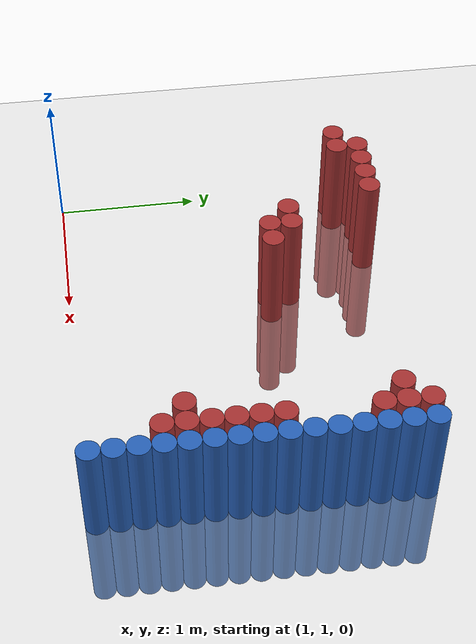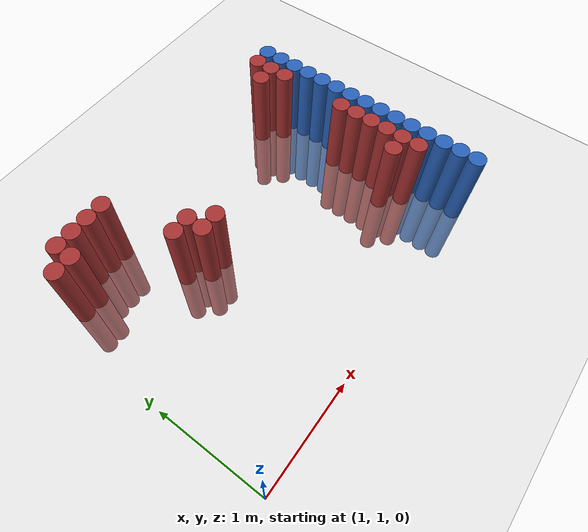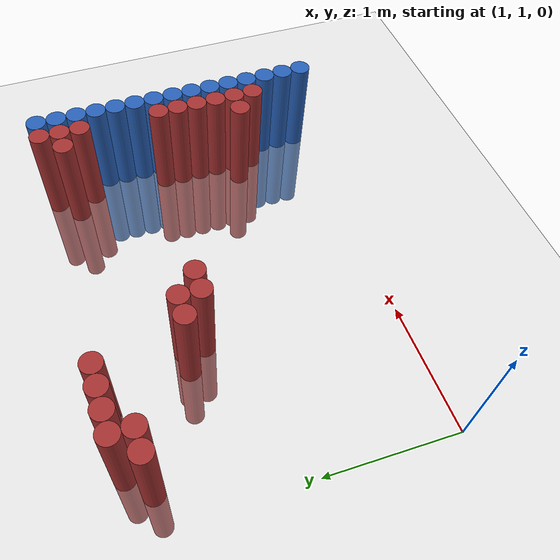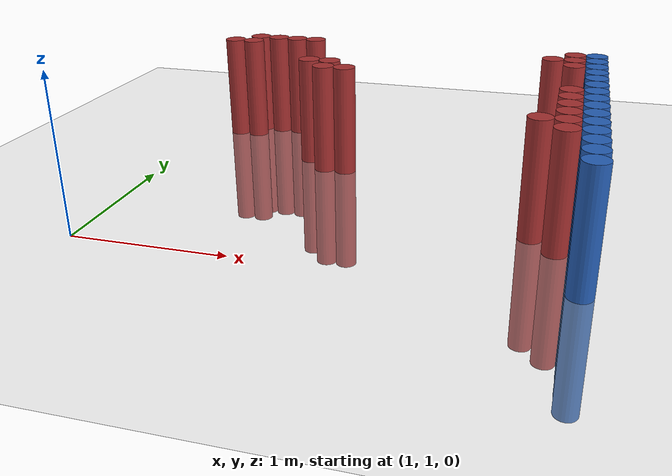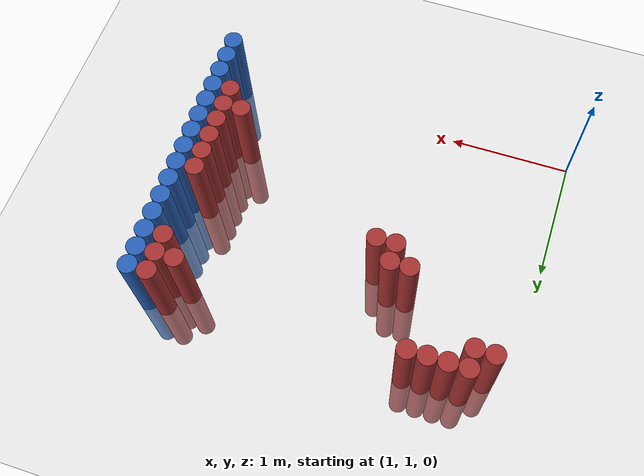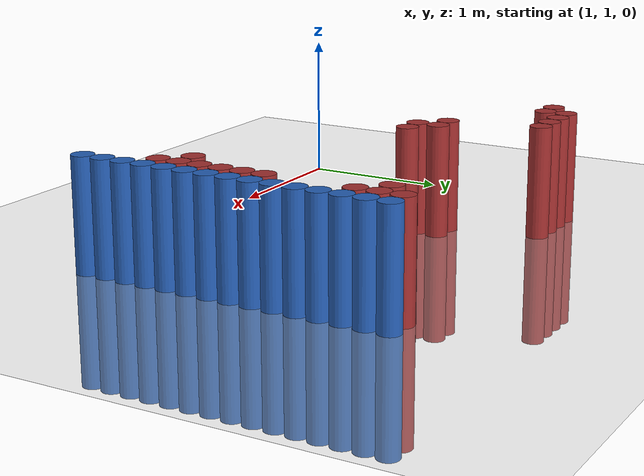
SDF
<sdf version="1.6">
 <world name="default">
  <model name="ground_plane">
   <static>1</static>
   <link name="link">
    <collision name="collision">
     <geometry><plane><normal>0 0 1</normal><size>100 100</size></plane></geometry>
     <surface><friction><ode><mu>100</mu><mu2>50</mu2></ode></friction></surface>
    </collision>
    <visual name="visual">
     <cast_shadows>0</cast_shadows>
     <geometry><plane><normal>0 0 1</normal><size>100 100</size></plane></geometry>
     <material>
      <script><uri>file://media/materials/scripts/gazebo.material</uri><name>Gazebo/Grey</name></script>
     </material>
    </visual>
   </link>
  </model>
  <model name="unit_cylinder_130">
   <static>1</static>
   <pose>3.925000 1.225000 0.000000 0.000000 0.000000 0.000000</pose>
   <link name="link">
    <inertial>
     <mass>1</mass>
     <inertia><ixx>0.145833</ixx><ixy>0</ixy><ixz>0</ixz><iyy>0.145833</iyy><iyz>0</iyz><izz>0.125</izz></inertia>
    </inertial>
    <collision name="collision">
     <geometry><cylinder><radius>0.075000</radius><length>1.5</length></cylinder></geometry>
    </collision>
    <visual name="visual">
     <geometry><cylinder><radius>0.075000</radius><length>1.5</length></cylinder></geometry>
     <material>
      <ambient>0.152000 0.379000 0.720000 1</ambient>
      <diffuse>0.152000 0.379000 0.720000 1</diffuse>
     </material>
     <material>
      <script><name>Gazebo/Grey</name><uri>file://media/materials/scripts/gazebo.material</uri></script>
     </material>
    </visual>
   </link>
  </model>
  <model name="unit_cylinder_132">
   <static>1</static>
   <pose>3.925000 1.375000 0.000000 0.000000 0.000000 0.000000</pose>
   <link name="link">
    <inertial>
     <mass>1</mass>
     <inertia><ixx>0.145833</ixx><ixy>0</ixy><ixz>0</ixz><iyy>0.145833</iyy><iyz>0</iyz><izz>0.125</izz></inertia>
    </inertial>
    <collision name="collision">
     <geometry><cylinder><radius>0.075000</radius><length>1.5</length></cylinder></geometry>
    </collision>
    <visual name="visual">
     <geometry><cylinder><radius>0.075000</radius><length>1.5</length></cylinder></geometry>
     <material>
      <ambient>0.152000 0.379000 0.720000 1</ambient>
      <diffuse>0.152000 0.379000 0.720000 1</diffuse>
     </material>
     <material>
      <script><name>Gazebo/Grey</name><uri>file://media/materials/scripts/gazebo.material</uri></script>
     </material>
    </visual>
   </link>
  </model>
  <model name="unit_cylinder_134">
   <static>1</static>
   <pose>3.925000 1.525000 0.000000 0.000000 0.000000 0.000000</pose>
   <link name="link">
    <inertial>
     <mass>1</mass>
     <inertia><ixx>0.145833</ixx><ixy>0</ixy><ixz>0</ixz><iyy>0.145833</iyy><iyz>0</iyz><izz>0.125</izz></inertia>
    </inertial>
    <collision name="collision">
     <geometry><cylinder><radius>0.075000</radius><length>1.5</length></cylinder></geometry>
    </collision>
    <visual name="visual">
     <geometry><cylinder><radius>0.075000</radius><length>1.5</length></cylinder></geometry>
     <material>
      <ambient>0.152000 0.379000 0.720000 1</ambient>
      <diffuse>0.152000 0.379000 0.720000 1</diffuse>
     </material>
     <material>
      <script><name>Gazebo/Grey</name><uri>file://media/materials/scripts/gazebo.material</uri></script>
     </material>
    </visual>
   </link>
  </model>
  <model name="unit_cylinder_136">
   <static>1</static>
   <pose>3.925000 1.675000 0.000000 0.000000 0.000000 0.000000</pose>
   <link name="link">
    <inertial>
     <mass>1</mass>
     <inertia><ixx>0.145833</ixx><ixy>0</ixy><ixz>0</ixz><iyy>0.145833</iyy><iyz>0</iyz><izz>0.125</izz></inertia>
    </inertial>
    <collision name="collision">
     <geometry><cylinder><radius>0.075000</radius><length>1.5</length></cylinder></geometry>
    </collision>
    <visual name="visual">
     <geometry><cylinder><radius>0.075000</radius><length>1.5</length></cylinder></geometry>
     <material>
      <ambient>0.152000 0.379000 0.720000 1</ambient>
      <diffuse>0.152000 0.379000 0.720000 1</diffuse>
     </material>
     <material>
      <script><name>Gazebo/Grey</name><uri>file://media/materials/scripts/gazebo.material</uri></script>
     </material>
    </visual>
   </link>
  </model>
  <model name="unit_cylinder_138">
   <static>1</static>
   <pose>3.925000 1.825000 0.000000 0.000000 0.000000 0.000000</pose>
   <link name="link">
    <inertial>
     <mass>1</mass>
     <inertia><ixx>0.145833</ixx><ixy>0</ixy><ixz>0</ixz><iyy>0.145833</iyy><iyz>0</iyz><izz>0.125</izz></inertia>
    </inertial>
    <collision name="collision">
     <geometry><cylinder><radius>0.075000</radius><length>1.5</length></cylinder></geometry>
    </collision>
    <visual name="visual">
     <geometry><cylinder><radius>0.075000</radius><length>1.5</length></cylinder></geometry>
     <material>
      <ambient>0.152000 0.379000 0.720000 1</ambient>
      <diffuse>0.152000 0.379000 0.720000 1</diffuse>
     </material>
     <material>
      <script><name>Gazebo/Grey</name><uri>file://media/materials/scripts/gazebo.material</uri></script>
     </material>
    </visual>
   </link>
  </model>
  <model name="unit_cylinder_140">
   <static>1</static>
   <pose>3.925000 1.975000 0.000000 0.000000 0.000000 0.000000</pose>
   <link name="link">
    <inertial>
     <mass>1</mass>
     <inertia><ixx>0.145833</ixx><ixy>0</ixy><ixz>0</ixz><iyy>0.145833</iyy><iyz>0</iyz><izz>0.125</izz></inertia>
    </inertial>
    <collision name="collision">
     <geometry><cylinder><radius>0.075000</radius><length>1.5</length></cylinder></geometry>
    </collision>
    <visual name="visual">
     <geometry><cylinder><radius>0.075000</radius><length>1.5</length></cylinder></geometry>
     <material>
      <ambient>0.152000 0.379000 0.720000 1</ambient>
      <diffuse>0.152000 0.379000 0.720000 1</diffuse>
     </material>
     <material>
      <script><name>Gazebo/Grey</name><uri>file://media/materials/scripts/gazebo.material</uri></script>
     </material>
    </visual>
   </link>
  </model>
  <model name="unit_cylinder_142">
   <static>1</static>
   <pose>3.925000 2.125000 0.000000 0.000000 0.000000 0.000000</pose>
   <link name="link">
    <inertial>
     <mass>1</mass>
     <inertia><ixx>0.145833</ixx><ixy>0</ixy><ixz>0</ixz><iyy>0.145833</iyy><iyz>0</iyz><izz>0.125</izz></inertia>
    </inertial>
    <collision name="collision">
     <geometry><cylinder><radius>0.075000</radius><length>1.5</length></cylinder></geometry>
    </collision>
    <visual name="visual">
     <geometry><cylinder><radius>0.075000</radius><length>1.5</length></cylinder></geometry>
     <material>
      <ambient>0.152000 0.379000 0.720000 1</ambient>
      <diffuse>0.152000 0.379000 0.720000 1</diffuse>
     </material>
     <material>
      <script><name>Gazebo/Grey</name><uri>file://media/materials/scripts/gazebo.material</uri></script>
     </material>
    </visual>
   </link>
  </model>
  <model name="unit_cylinder_144">
   <static>1</static>
   <pose>3.925000 2.275000 0.000000 0.000000 0.000000 0.000000</pose>
   <link name="link">
    <inertial>
     <mass>1</mass>
     <inertia><ixx>0.145833</ixx><ixy>0</ixy><ixz>0</ixz><iyy>0.145833</iyy><iyz>0</iyz><izz>0.125</izz></inertia>
    </inertial>
    <collision name="collision">
     <geometry><cylinder><radius>0.075000</radius><length>1.5</length></cylinder></geometry>
    </collision>
    <visual name="visual">
     <geometry><cylinder><radius>0.075000</radius><length>1.5</length></cylinder></geometry>
     <material>
      <ambient>0.152000 0.379000 0.720000 1</ambient>
      <diffuse>0.152000 0.379000 0.720000 1</diffuse>
     </material>
     <material>
      <script><name>Gazebo/Grey</name><uri>file://media/materials/scripts/gazebo.material</uri></script>
     </material>
    </visual>
   </link>
  </model>
  <model name="unit_cylinder_146">
   <static>1</static>
   <pose>3.925000 2.425000 0.000000 0.000000 0.000000 0.000000</pose>
   <link name="link">
    <inertial>
     <mass>1</mass>
     <inertia><ixx>0.145833</ixx><ixy>0</ixy><ixz>0</ixz><iyy>0.145833</iyy><iyz>0</iyz><izz>0.125</izz></inertia>
    </inertial>
    <collision name="collision">
     <geometry><cylinder><radius>0.075000</radius><length>1.5</length></cylinder></geometry>
    </collision>
    <visual name="visual">
     <geometry><cylinder><radius>0.075000</radius><length>1.5</length></cylinder></geometry>
     <material>
      <ambient>0.152000 0.379000 0.720000 1</ambient>
      <diffuse>0.152000 0.379000 0.720000 1</diffuse>
     </material>
     <material>
      <script><name>Gazebo/Grey</name><uri>file://media/materials/scripts/gazebo.material</uri></script>
     </material>
    </visual>
   </link>
  </model>
  <model name="unit_cylinder_148">
   <static>1</static>
   <pose>3.925000 2.575000 0.000000 0.000000 0.000000 0.000000</pose>
   <link name="link">
    <inertial>
     <mass>1</mass>
     <inertia><ixx>0.145833</ixx><ixy>0</ixy><ixz>0</ixz><iyy>0.145833</iyy><iyz>0</iyz><izz>0.125</izz></inertia>
    </inertial>
    <collision name="collision">
     <geometry><cylinder><radius>0.075000</radius><length>1.5</length></cylinder></geometry>
    </collision>
    <visual name="visual">
     <geometry><cylinder><radius>0.075000</radius><length>1.5</length></cylinder></geometry>
     <material>
      <ambient>0.152000 0.379000 0.720000 1</ambient>
      <diffuse>0.152000 0.379000 0.720000 1</diffuse>
     </material>
     <material>
      <script><name>Gazebo/Grey</name><uri>file://media/materials/scripts/gazebo.material</uri></script>
     </material>
    </visual>
   </link>
  </model>
  <model name="unit_cylinder_150">
   <static>1</static>
   <pose>3.925000 2.725000 0.000000 0.000000 0.000000 0.000000</pose>
   <link name="link">
    <inertial>
     <mass>1</mass>
     <inertia><ixx>0.145833</ixx><ixy>0</ixy><ixz>0</ixz><iyy>0.145833</iyy><iyz>0</iyz><izz>0.125</izz></inertia>
    </inertial>
    <collision name="collision">
     <geometry><cylinder><radius>0.075000</radius><length>1.5</length></cylinder></geometry>
    </collision>
    <visual name="visual">
     <geometry><cylinder><radius>0.075000</radius><length>1.5</length></cylinder></geometry>
     <material>
      <ambient>0.152000 0.379000 0.720000 1</ambient>
      <diffuse>0.152000 0.379000 0.720000 1</diffuse>
     </material>
     <material>
      <script><name>Gazebo/Grey</name><uri>file://media/materials/scripts/gazebo.material</uri></script>
     </material>
    </visual>
   </link>
  </model>
  <model name="unit_cylinder_152">
   <static>1</static>
   <pose>3.925000 2.875000 0.000000 0.000000 0.000000 0.000000</pose>
   <link name="link">
    <inertial>
     <mass>1</mass>
     <inertia><ixx>0.145833</ixx><ixy>0</ixy><ixz>0</ixz><iyy>0.145833</iyy><iyz>0</iyz><izz>0.125</izz></inertia>
    </inertial>
    <collision name="collision">
     <geometry><cylinder><radius>0.075000</radius><length>1.5</length></cylinder></geometry>
    </collision>
    <visual name="visual">
     <geometry><cylinder><radius>0.075000</radius><length>1.5</length></cylinder></geometry>
     <material>
      <ambient>0.152000 0.379000 0.720000 1</ambient>
      <diffuse>0.152000 0.379000 0.720000 1</diffuse>
     </material>
     <material>
      <script><name>Gazebo/Grey</name><uri>file://media/materials/scripts/gazebo.material</uri></script>
     </material>
    </visual>
   </link>
  </model>
  <model name="unit_cylinder_154">
   <static>1</static>
   <pose>3.925000 3.025000 0.000000 0.000000 0.000000 0.000000</pose>
   <link name="link">
    <inertial>
     <mass>1</mass>
     <inertia><ixx>0.145833</ixx><ixy>0</ixy><ixz>0</ixz><iyy>0.145833</iyy><iyz>0</iyz><izz>0.125</izz></inertia>
    </inertial>
    <collision name="collision">
     <geometry><cylinder><radius>0.075000</radius><length>1.5</length></cylinder></geometry>
    </collision>
    <visual name="visual">
     <geometry><cylinder><radius>0.075000</radius><length>1.5</length></cylinder></geometry>
     <material>
      <ambient>0.152000 0.379000 0.720000 1</ambient>
      <diffuse>0.152000 0.379000 0.720000 1</diffuse>
     </material>
     <material>
      <script><name>Gazebo/Grey</name><uri>file://media/materials/scripts/gazebo.material</uri></script>
     </material>
    </visual>
   </link>
  </model>
  <model name="unit_cylinder_156">
   <static>1</static>
   <pose>3.925000 3.175000 0.000000 0.000000 0.000000 0.000000</pose>
   <link name="link">
    <inertial>
     <mass>1</mass>
     <inertia><ixx>0.145833</ixx><ixy>0</ixy><ixz>0</ixz><iyy>0.145833</iyy><iyz>0</iyz><izz>0.125</izz></inertia>
    </inertial>
    <collision name="collision">
     <geometry><cylinder><radius>0.075000</radius><length>1.5</length></cylinder></geometry>
    </collision>
    <visual name="visual">
     <geometry><cylinder><radius>0.075000</radius><length>1.5</length></cylinder></geometry>
     <material>
      <ambient>0.152000 0.379000 0.720000 1</ambient>
      <diffuse>0.152000 0.379000 0.720000 1</diffuse>
     </material>
     <material>
      <script><name>Gazebo/Grey</name><uri>file://media/materials/scripts/gazebo.material</uri></script>
     </material>
    </visual>
   </link>
  </model>
  <model name="unit_cylinder_382">
   <static>1</static>
   <pose>1.225000 3.025000 0.000000 0.000000 0.000000 0.000000</pose>
   <link name="link">
    <inertial>
     <mass>1</mass>
     <inertia><ixx>0.145833</ixx><ixy>0</ixy><ixz>0</ixz><iyy>0.145833</iyy><iyz>0</iyz><izz>0.125</izz></inertia>
    </inertial>
    <collision name="collision">
     <geometry><cylinder><radius>0.075000</radius><length>1.5</length></cylinder></geometry>
    </collision>
    <visual name="visual">
     <geometry><cylinder><radius>0.075000</radius><length>1.5</length></cylinder></geometry>
     <material>
      <ambient>0.648000 0.192000 0.192000 1</ambient>
      <diffuse>0.648000 0.192000 0.192000 1</diffuse>
     </material>
     <material>
      <script><name>Gazebo/Grey</name><uri>file://media/materials/scripts/gazebo.material</uri></script>
     </material>
    </visual>
   </link>
  </model>
  <model name="unit_cylinder_383">
   <static>1</static>
   <pose>1.375000 3.025000 0.000000 0.000000 0.000000 0.000000</pose>
   <link name="link">
    <inertial>
     <mass>1</mass>
     <inertia><ixx>0.145833</ixx><ixy>0</ixy><ixz>0</ixz><iyy>0.145833</iyy><iyz>0</iyz><izz>0.125</izz></inertia>
    </inertial>
    <collision name="collision">
     <geometry><cylinder><radius>0.075000</radius><length>1.5</length></cylinder></geometry>
    </collision>
    <visual name="visual">
     <geometry><cylinder><radius>0.075000</radius><length>1.5</length></cylinder></geometry>
     <material>
      <ambient>0.648000 0.192000 0.192000 1</ambient>
      <diffuse>0.648000 0.192000 0.192000 1</diffuse>
     </material>
     <material>
      <script><name>Gazebo/Grey</name><uri>file://media/materials/scripts/gazebo.material</uri></script>
     </material>
    </visual>
   </link>
  </model>
  <model name="unit_cylinder_384">
   <static>1</static>
   <pose>1.375000 3.175000 0.000000 0.000000 0.000000 0.000000</pose>
   <link name="link">
    <inertial>
     <mass>1</mass>
     <inertia><ixx>0.145833</ixx><ixy>0</ixy><ixz>0</ixz><iyy>0.145833</iyy><iyz>0</iyz><izz>0.125</izz></inertia>
    </inertial>
    <collision name="collision">
     <geometry><cylinder><radius>0.075000</radius><length>1.5</length></cylinder></geometry>
    </collision>
    <visual name="visual">
     <geometry><cylinder><radius>0.075000</radius><length>1.5</length></cylinder></geometry>
     <material>
      <ambient>0.648000 0.192000 0.192000 1</ambient>
      <diffuse>0.648000 0.192000 0.192000 1</diffuse>
     </material>
     <material>
      <script><name>Gazebo/Grey</name><uri>file://media/materials/scripts/gazebo.material</uri></script>
     </material>
    </visual>
   </link>
  </model>
  <model name="unit_cylinder_387">
   <static>1</static>
   <pose>1.525000 3.175000 0.000000 0.000000 0.000000 0.000000</pose>
   <link name="link">
    <inertial>
     <mass>1</mass>
     <inertia><ixx>0.145833</ixx><ixy>0</ixy><ixz>0</ixz><iyy>0.145833</iyy><iyz>0</iyz><izz>0.125</izz></inertia>
    </inertial>
    <collision name="collision">
     <geometry><cylinder><radius>0.075000</radius><length>1.5</length></cylinder></geometry>
    </collision>
    <visual name="visual">
     <geometry><cylinder><radius>0.075000</radius><length>1.5</length></cylinder></geometry>
     <material>
      <ambient>0.648000 0.192000 0.192000 1</ambient>
      <diffuse>0.648000 0.192000 0.192000 1</diffuse>
     </material>
     <material>
      <script><name>Gazebo/Grey</name><uri>file://media/materials/scripts/gazebo.material</uri></script>
     </material>
    </visual>
   </link>
  </model>
  <model name="unit_cylinder_391">
   <static>1</static>
   <pose>1.675000 3.175000 0.000000 0.000000 0.000000 0.000000</pose>
   <link name="link">
    <inertial>
     <mass>1</mass>
     <inertia><ixx>0.145833</ixx><ixy>0</ixy><ixz>0</ixz><iyy>0.145833</iyy><iyz>0</iyz><izz>0.125</izz></inertia>
    </inertial>
    <collision name="collision">
     <geometry><cylinder><radius>0.075000</radius><length>1.5</length></cylinder></geometry>
    </collision>
    <visual name="visual">
     <geometry><cylinder><radius>0.075000</radius><length>1.5</length></cylinder></geometry>
     <material>
      <ambient>0.648000 0.192000 0.192000 1</ambient>
      <diffuse>0.648000 0.192000 0.192000 1</diffuse>
     </material>
     <material>
      <script><name>Gazebo/Grey</name><uri>file://media/materials/scripts/gazebo.material</uri></script>
     </material>
    </visual>
   </link>
  </model>
  <model name="unit_cylinder_394">
   <static>1</static>
   <pose>1.825000 3.175000 0.000000 0.000000 0.000000 0.000000</pose>
   <link name="link">
    <inertial>
     <mass>1</mass>
     <inertia><ixx>0.145833</ixx><ixy>0</ixy><ixz>0</ixz><iyy>0.145833</iyy><iyz>0</iyz><izz>0.125</izz></inertia>
    </inertial>
    <collision name="collision">
     <geometry><cylinder><radius>0.075000</radius><length>1.5</length></cylinder></geometry>
    </collision>
    <visual name="visual">
     <geometry><cylinder><radius>0.075000</radius><length>1.5</length></cylinder></geometry>
     <material>
      <ambient>0.648000 0.192000 0.192000 1</ambient>
      <diffuse>0.648000 0.192000 0.192000 1</diffuse>
     </material>
     <material>
      <script><name>Gazebo/Grey</name><uri>file://media/materials/scripts/gazebo.material</uri></script>
     </material>
    </visual>
   </link>
  </model>
  <model name="unit_cylinder_398">
   <static>1</static>
   <pose>1.975000 2.575000 0.000000 0.000000 0.000000 0.000000</pose>
   <link name="link">
    <inertial>
     <mass>1</mass>
     <inertia><ixx>0.145833</ixx><ixy>0</ixy><ixz>0</ixz><iyy>0.145833</iyy><iyz>0</iyz><izz>0.125</izz></inertia>
    </inertial>
    <collision name="collision">
     <geometry><cylinder><radius>0.075000</radius><length>1.5</length></cylinder></geometry>
    </collision>
    <visual name="visual">
     <geometry><cylinder><radius>0.075000</radius><length>1.5</length></cylinder></geometry>
     <material>
      <ambient>0.648000 0.192000 0.192000 1</ambient>
      <diffuse>0.648000 0.192000 0.192000 1</diffuse>
     </material>
     <material>
      <script><name>Gazebo/Grey</name><uri>file://media/materials/scripts/gazebo.material</uri></script>
     </material>
    </visual>
   </link>
  </model>
  <model name="unit_cylinder_403">
   <static>1</static>
   <pose>2.125000 2.425000 0.000000 0.000000 0.000000 0.000000</pose>
   <link name="link">
    <inertial>
     <mass>1</mass>
     <inertia><ixx>0.145833</ixx><ixy>0</ixy><ixz>0</ixz><iyy>0.145833</iyy><iyz>0</iyz><izz>0.125</izz></inertia>
    </inertial>
    <collision name="collision">
     <geometry><cylinder><radius>0.075000</radius><length>1.5</length></cylinder></geometry>
    </collision>
    <visual name="visual">
     <geometry><cylinder><radius>0.075000</radius><length>1.5</length></cylinder></geometry>
     <material>
      <ambient>0.648000 0.192000 0.192000 1</ambient>
      <diffuse>0.648000 0.192000 0.192000 1</diffuse>
     </material>
     <material>
      <script><name>Gazebo/Grey</name><uri>file://media/materials/scripts/gazebo.material</uri></script>
     </material>
    </visual>
   </link>
  </model>
  <model name="unit_cylinder_404">
   <static>1</static>
   <pose>2.125000 2.575000 0.000000 0.000000 0.000000 0.000000</pose>
   <link name="link">
    <inertial>
     <mass>1</mass>
     <inertia><ixx>0.145833</ixx><ixy>0</ixy><ixz>0</ixz><iyy>0.145833</iyy><iyz>0</iyz><izz>0.125</izz></inertia>
    </inertial>
    <collision name="collision">
     <geometry><cylinder><radius>0.075000</radius><length>1.5</length></cylinder></geometry>
    </collision>
    <visual name="visual">
     <geometry><cylinder><radius>0.075000</radius><length>1.5</length></cylinder></geometry>
     <material>
      <ambient>0.648000 0.192000 0.192000 1</ambient>
      <diffuse>0.648000 0.192000 0.192000 1</diffuse>
     </material>
     <material>
      <script><name>Gazebo/Grey</name><uri>file://media/materials/scripts/gazebo.material</uri></script>
     </material>
    </visual>
   </link>
  </model>
  <model name="unit_cylinder_408">
   <static>1</static>
   <pose>2.275000 2.425000 0.000000 0.000000 0.000000 0.000000</pose>
   <link name="link">
    <inertial>
     <mass>1</mass>
     <inertia><ixx>0.145833</ixx><ixy>0</ixy><ixz>0</ixz><iyy>0.145833</iyy><iyz>0</iyz><izz>0.125</izz></inertia>
    </inertial>
    <collision name="collision">
     <geometry><cylinder><radius>0.075000</radius><length>1.5</length></cylinder></geometry>
    </collision>
    <visual name="visual">
     <geometry><cylinder><radius>0.075000</radius><length>1.5</length></cylinder></geometry>
     <material>
      <ambient>0.648000 0.192000 0.192000 1</ambient>
      <diffuse>0.648000 0.192000 0.192000 1</diffuse>
     </material>
     <material>
      <script><name>Gazebo/Grey</name><uri>file://media/materials/scripts/gazebo.material</uri></script>
     </material>
    </visual>
   </link>
  </model>
  <model name="unit_cylinder_417">
   <static>1</static>
   <pose>3.625000 1.675000 0.000000 0.000000 0.000000 0.000000</pose>
   <link name="link">
    <inertial>
     <mass>1</mass>
     <inertia><ixx>0.145833</ixx><ixy>0</ixy><ixz>0</ixz><iyy>0.145833</iyy><iyz>0</iyz><izz>0.125</izz></inertia>
    </inertial>
    <collision name="collision">
     <geometry><cylinder><radius>0.075000</radius><length>1.5</length></cylinder></geometry>
    </collision>
    <visual name="visual">
     <geometry><cylinder><radius>0.075000</radius><length>1.5</length></cylinder></geometry>
     <material>
      <ambient>0.648000 0.192000 0.192000 1</ambient>
      <diffuse>0.648000 0.192000 0.192000 1</diffuse>
     </material>
     <material>
      <script><name>Gazebo/Grey</name><uri>file://media/materials/scripts/gazebo.material</uri></script>
     </material>
    </visual>
   </link>
  </model>
  <model name="unit_cylinder_418">
   <static>1</static>
   <pose>3.625000 3.025000 0.000000 0.000000 0.000000 0.000000</pose>
   <link name="link">
    <inertial>
     <mass>1</mass>
     <inertia><ixx>0.145833</ixx><ixy>0</ixy><ixz>0</ixz><iyy>0.145833</iyy><iyz>0</iyz><izz>0.125</izz></inertia>
    </inertial>
    <collision name="collision">
     <geometry><cylinder><radius>0.075000</radius><length>1.5</length></cylinder></geometry>
    </collision>
    <visual name="visual">
     <geometry><cylinder><radius>0.075000</radius><length>1.5</length></cylinder></geometry>
     <material>
      <ambient>0.648000 0.192000 0.192000 1</ambient>
      <diffuse>0.648000 0.192000 0.192000 1</diffuse>
     </material>
     <material>
      <script><name>Gazebo/Grey</name><uri>file://media/materials/scripts/gazebo.material</uri></script>
     </material>
    </visual>
   </link>
  </model>
  <model name="unit_cylinder_430">
   <static>1</static>
   <pose>3.775000 1.525000 0.000000 0.000000 0.000000 0.000000</pose>
   <link name="link">
    <inertial>
     <mass>1</mass>
     <inertia><ixx>0.145833</ixx><ixy>0</ixy><ixz>0</ixz><iyy>0.145833</iyy><iyz>0</iyz><izz>0.125</izz></inertia>
    </inertial>
    <collision name="collision">
     <geometry><cylinder><radius>0.075000</radius><length>1.5</length></cylinder></geometry>
    </collision>
    <visual name="visual">
     <geometry><cylinder><radius>0.075000</radius><length>1.5</length></cylinder></geometry>
     <material>
      <ambient>0.648000 0.192000 0.192000 1</ambient>
      <diffuse>0.648000 0.192000 0.192000 1</diffuse>
     </material>
     <material>
      <script><name>Gazebo/Grey</name><uri>file://media/materials/scripts/gazebo.material</uri></script>
     </material>
    </visual>
   </link>
  </model>
  <model name="unit_cylinder_431">
   <static>1</static>
   <pose>3.775000 1.675000 0.000000 0.000000 0.000000 0.000000</pose>
   <link name="link">
    <inertial>
     <mass>1</mass>
     <inertia><ixx>0.145833</ixx><ixy>0</ixy><ixz>0</ixz><iyy>0.145833</iyy><iyz>0</iyz><izz>0.125</izz></inertia>
    </inertial>
    <collision name="collision">
     <geometry><cylinder><radius>0.075000</radius><length>1.5</length></cylinder></geometry>
    </collision>
    <visual name="visual">
     <geometry><cylinder><radius>0.075000</radius><length>1.5</length></cylinder></geometry>
     <material>
      <ambient>0.648000 0.192000 0.192000 1</ambient>
      <diffuse>0.648000 0.192000 0.192000 1</diffuse>
     </material>
     <material>
      <script><name>Gazebo/Grey</name><uri>file://media/materials/scripts/gazebo.material</uri></script>
     </material>
    </visual>
   </link>
  </model>
  <model name="unit_cylinder_432">
   <static>1</static>
   <pose>3.775000 1.825000 0.000000 0.000000 0.000000 0.000000</pose>
   <link name="link">
    <inertial>
     <mass>1</mass>
     <inertia><ixx>0.145833</ixx><ixy>0</ixy><ixz>0</ixz><iyy>0.145833</iyy><iyz>0</iyz><izz>0.125</izz></inertia>
    </inertial>
    <collision name="collision">
     <geometry><cylinder><radius>0.075000</radius><length>1.5</length></cylinder></geometry>
    </collision>
    <visual name="visual">
     <geometry><cylinder><radius>0.075000</radius><length>1.5</length></cylinder></geometry>
     <material>
      <ambient>0.648000 0.192000 0.192000 1</ambient>
      <diffuse>0.648000 0.192000 0.192000 1</diffuse>
     </material>
     <material>
      <script><name>Gazebo/Grey</name><uri>file://media/materials/scripts/gazebo.material</uri></script>
     </material>
    </visual>
   </link>
  </model>
  <model name="unit_cylinder_433">
   <static>1</static>
   <pose>3.775000 1.975000 0.000000 0.000000 0.000000 0.000000</pose>
   <link name="link">
    <inertial>
     <mass>1</mass>
     <inertia><ixx>0.145833</ixx><ixy>0</ixy><ixz>0</ixz><iyy>0.145833</iyy><iyz>0</iyz><izz>0.125</izz></inertia>
    </inertial>
    <collision name="collision">
     <geometry><cylinder><radius>0.075000</radius><length>1.5</length></cylinder></geometry>
    </collision>
    <visual name="visual">
     <geometry><cylinder><radius>0.075000</radius><length>1.5</length></cylinder></geometry>
     <material>
      <ambient>0.648000 0.192000 0.192000 1</ambient>
      <diffuse>0.648000 0.192000 0.192000 1</diffuse>
     </material>
     <material>
      <script><name>Gazebo/Grey</name><uri>file://media/materials/scripts/gazebo.material</uri></script>
     </material>
    </visual>
   </link>
  </model>
  <model name="unit_cylinder_434">
   <static>1</static>
   <pose>3.775000 2.125000 0.000000 0.000000 0.000000 0.000000</pose>
   <link name="link">
    <inertial>
     <mass>1</mass>
     <inertia><ixx>0.145833</ixx><ixy>0</ixy><ixz>0</ixz><iyy>0.145833</iyy><iyz>0</iyz><izz>0.125</izz></inertia>
    </inertial>
    <collision name="collision">
     <geometry><cylinder><radius>0.075000</radius><length>1.5</length></cylinder></geometry>
    </collision>
    <visual name="visual">
     <geometry><cylinder><radius>0.075000</radius><length>1.5</length></cylinder></geometry>
     <material>
      <ambient>0.648000 0.192000 0.192000 1</ambient>
      <diffuse>0.648000 0.192000 0.192000 1</diffuse>
     </material>
     <material>
      <script><name>Gazebo/Grey</name><uri>file://media/materials/scripts/gazebo.material</uri></script>
     </material>
    </visual>
   </link>
  </model>
  <model name="unit_cylinder_435">
   <static>1</static>
   <pose>3.775000 2.275000 0.000000 0.000000 0.000000 0.000000</pose>
   <link name="link">
    <inertial>
     <mass>1</mass>
     <inertia><ixx>0.145833</ixx><ixy>0</ixy><ixz>0</ixz><iyy>0.145833</iyy><iyz>0</iyz><izz>0.125</izz></inertia>
    </inertial>
    <collision name="collision">
     <geometry><cylinder><radius>0.075000</radius><length>1.5</length></cylinder></geometry>
    </collision>
    <visual name="visual">
     <geometry><cylinder><radius>0.075000</radius><length>1.5</length></cylinder></geometry>
     <material>
      <ambient>0.648000 0.192000 0.192000 1</ambient>
      <diffuse>0.648000 0.192000 0.192000 1</diffuse>
     </material>
     <material>
      <script><name>Gazebo/Grey</name><uri>file://media/materials/scripts/gazebo.material</uri></script>
     </material>
    </visual>
   </link>
  </model>
  <model name="unit_cylinder_436">
   <static>1</static>
   <pose>3.775000 2.875000 0.000000 0.000000 0.000000 0.000000</pose>
   <link name="link">
    <inertial>
     <mass>1</mass>
     <inertia><ixx>0.145833</ixx><ixy>0</ixy><ixz>0</ixz><iyy>0.145833</iyy><iyz>0</iyz><izz>0.125</izz></inertia>
    </inertial>
    <collision name="collision">
     <geometry><cylinder><radius>0.075000</radius><length>1.5</length></cylinder></geometry>
    </collision>
    <visual name="visual">
     <geometry><cylinder><radius>0.075000</radius><length>1.5</length></cylinder></geometry>
     <material>
      <ambient>0.648000 0.192000 0.192000 1</ambient>
      <diffuse>0.648000 0.192000 0.192000 1</diffuse>
     </material>
     <material>
      <script><name>Gazebo/Grey</name><uri>file://media/materials/scripts/gazebo.material</uri></script>
     </material>
    </visual>
   </link>
  </model>
  <model name="unit_cylinder_437">
   <static>1</static>
   <pose>3.775000 3.025000 0.000000 0.000000 0.000000 0.000000</pose>
   <link name="link">
    <inertial>
     <mass>1</mass>
     <inertia><ixx>0.145833</ixx><ixy>0</ixy><ixz>0</ixz><iyy>0.145833</iyy><iyz>0</iyz><izz>0.125</izz></inertia>
    </inertial>
    <collision name="collision">
     <geometry><cylinder><radius>0.075000</radius><length>1.5</length></cylinder></geometry>
    </collision>
    <visual name="visual">
     <geometry><cylinder><radius>0.075000</radius><length>1.5</length></cylinder></geometry>
     <material>
      <ambient>0.648000 0.192000 0.192000 1</ambient>
      <diffuse>0.648000 0.192000 0.192000 1</diffuse>
     </material>
     <material>
      <script><name>Gazebo/Grey</name><uri>file://media/materials/scripts/gazebo.material</uri></script>
     </material>
    </visual>
   </link>
  </model>
  <model name="unit_cylinder_438">
   <static>1</static>
   <pose>3.775000 3.175000 0.000000 0.000000 0.000000 0.000000</pose>
   <link name="link">
    <inertial>
     <mass>1</mass>
     <inertia><ixx>0.145833</ixx><ixy>0</ixy><ixz>0</ixz><iyy>0.145833</iyy><iyz>0</iyz><izz>0.125</izz></inertia>
    </inertial>
    <collision name="collision">
     <geometry><cylinder><radius>0.075000</radius><length>1.5</length></cylinder></geometry>
    </collision>
    <visual name="visual">
     <geometry><cylinder><radius>0.075000</radius><length>1.5</length></cylinder></geometry>
     <material>
      <ambient>0.648000 0.192000 0.192000 1</ambient>
      <diffuse>0.648000 0.192000 0.192000 1</diffuse>
     </material>
     <material>
      <script><name>Gazebo/Grey</name><uri>file://media/materials/scripts/gazebo.material</uri></script>
     </material>
    </visual>
   </link>
  </model>
  <model name="unit_cylinder_462">
   <static>1</static>
   <pose>3.925000 1.075000 0.000000 0.000000 0.000000 0.000000</pose>
   <link name="link">
    <inertial>
     <mass>1</mass>
     <inertia><ixx>0.145833</ixx><ixy>0</ixy><ixz>0</ixz><iyy>0.145833</iyy><iyz>0</iyz><izz>0.125</izz></inertia>
    </inertial>
    <collision name="collision">
     <geometry><cylinder><radius>0.075000</radius><length>1.5</length></cylinder></geometry>
    </collision>
    <visual name="visual">
     <geometry><cylinder><radius>0.075000</radius><length>1.5</length></cylinder></geometry>
     <material>
      <ambient>0.152000 0.379000 0.720000 1</ambient>
      <diffuse>0.152000 0.379000 0.720000 1</diffuse>
     </material>
     <material>
      <script><name>Gazebo/Grey</name><uri>file://media/materials/scripts/gazebo.material</uri></script>
     </material>
    </visual>
   </link>
  </model>
  <model name="unit_cylinder_463">
   <static>1</static>
   <pose>3.925000 1.225000 0.000000 0.000000 0.000000 0.000000</pose>
   <link name="link">
    <inertial>
     <mass>1</mass>
     <inertia><ixx>0.145833</ixx><ixy>0</ixy><ixz>0</ixz><iyy>0.145833</iyy><iyz>0</iyz><izz>0.125</izz></inertia>
    </inertial>
    <collision name="collision">
     <geometry><cylinder><radius>0.075000</radius><length>1.5</length></cylinder></geometry>
    </collision>
    <visual name="visual">
     <geometry><cylinder><radius>0.075000</radius><length>1.5</length></cylinder></geometry>
     <material>
      <ambient>0.152000 0.379000 0.720000 1</ambient>
      <diffuse>0.152000 0.379000 0.720000 1</diffuse>
     </material>
     <material>
      <script><name>Gazebo/Grey</name><uri>file://media/materials/scripts/gazebo.material</uri></script>
     </material>
    </visual>
   </link>
  </model>
  <model name="unit_cylinder_464">
   <static>1</static>
   <pose>3.925000 1.375000 0.000000 0.000000 0.000000 0.000000</pose>
   <link name="link">
    <inertial>
     <mass>1</mass>
     <inertia><ixx>0.145833</ixx><ixy>0</ixy><ixz>0</ixz><iyy>0.145833</iyy><iyz>0</iyz><izz>0.125</izz></inertia>
    </inertial>
    <collision name="collision">
     <geometry><cylinder><radius>0.075000</radius><length>1.5</length></cylinder></geometry>
    </collision>
    <visual name="visual">
     <geometry><cylinder><radius>0.075000</radius><length>1.5</length></cylinder></geometry>
     <material>
      <ambient>0.152000 0.379000 0.720000 1</ambient>
      <diffuse>0.152000 0.379000 0.720000 1</diffuse>
     </material>
     <material>
      <script><name>Gazebo/Grey</name><uri>file://media/materials/scripts/gazebo.material</uri></script>
     </material>
    </visual>
   </link>
  </model>
  <model name="unit_cylinder_465">
   <static>1</static>
   <pose>3.925000 1.525000 0.000000 0.000000 0.000000 0.000000</pose>
   <link name="link">
    <inertial>
     <mass>1</mass>
     <inertia><ixx>0.145833</ixx><ixy>0</ixy><ixz>0</ixz><iyy>0.145833</iyy><iyz>0</iyz><izz>0.125</izz></inertia>
    </inertial>
    <collision name="collision">
     <geometry><cylinder><radius>0.075000</radius><length>1.5</length></cylinder></geometry>
    </collision>
    <visual name="visual">
     <geometry><cylinder><radius>0.075000</radius><length>1.5</length></cylinder></geometry>
     <material>
      <ambient>0.152000 0.379000 0.720000 1</ambient>
      <diffuse>0.152000 0.379000 0.720000 1</diffuse>
     </material>
     <material>
      <script><name>Gazebo/Grey</name><uri>file://media/materials/scripts/gazebo.material</uri></script>
     </material>
    </visual>
   </link>
  </model>
  <model name="unit_cylinder_466">
   <static>1</static>
   <pose>3.925000 1.675000 0.000000 0.000000 0.000000 0.000000</pose>
   <link name="link">
    <inertial>
     <mass>1</mass>
     <inertia><ixx>0.145833</ixx><ixy>0</ixy><ixz>0</ixz><iyy>0.145833</iyy><iyz>0</iyz><izz>0.125</izz></inertia>
    </inertial>
    <collision name="collision">
     <geometry><cylinder><radius>0.075000</radius><length>1.5</length></cylinder></geometry>
    </collision>
    <visual name="visual">
     <geometry><cylinder><radius>0.075000</radius><length>1.5</length></cylinder></geometry>
     <material>
      <ambient>0.152000 0.379000 0.720000 1</ambient>
      <diffuse>0.152000 0.379000 0.720000 1</diffuse>
     </material>
     <material>
      <script><name>Gazebo/Grey</name><uri>file://media/materials/scripts/gazebo.material</uri></script>
     </material>
    </visual>
   </link>
  </model>
  <model name="unit_cylinder_467">
   <static>1</static>
   <pose>3.925000 1.825000 0.000000 0.000000 0.000000 0.000000</pose>
   <link name="link">
    <inertial>
     <mass>1</mass>
     <inertia><ixx>0.145833</ixx><ixy>0</ixy><ixz>0</ixz><iyy>0.145833</iyy><iyz>0</iyz><izz>0.125</izz></inertia>
    </inertial>
    <collision name="collision">
     <geometry><cylinder><radius>0.075000</radius><length>1.5</length></cylinder></geometry>
    </collision>
    <visual name="visual">
     <geometry><cylinder><radius>0.075000</radius><length>1.5</length></cylinder></geometry>
     <material>
      <ambient>0.152000 0.379000 0.720000 1</ambient>
      <diffuse>0.152000 0.379000 0.720000 1</diffuse>
     </material>
     <material>
      <script><name>Gazebo/Grey</name><uri>file://media/materials/scripts/gazebo.material</uri></script>
     </material>
    </visual>
   </link>
  </model>
  <model name="unit_cylinder_468">
   <static>1</static>
   <pose>3.925000 1.975000 0.000000 0.000000 0.000000 0.000000</pose>
   <link name="link">
    <inertial>
     <mass>1</mass>
     <inertia><ixx>0.145833</ixx><ixy>0</ixy><ixz>0</ixz><iyy>0.145833</iyy><iyz>0</iyz><izz>0.125</izz></inertia>
    </inertial>
    <collision name="collision">
     <geometry><cylinder><radius>0.075000</radius><length>1.5</length></cylinder></geometry>
    </collision>
    <visual name="visual">
     <geometry><cylinder><radius>0.075000</radius><length>1.5</length></cylinder></geometry>
     <material>
      <ambient>0.152000 0.379000 0.720000 1</ambient>
      <diffuse>0.152000 0.379000 0.720000 1</diffuse>
     </material>
     <material>
      <script><name>Gazebo/Grey</name><uri>file://media/materials/scripts/gazebo.material</uri></script>
     </material>
    </visual>
   </link>
  </model>
  <model name="unit_cylinder_469">
   <static>1</static>
   <pose>3.925000 2.125000 0.000000 0.000000 0.000000 0.000000</pose>
   <link name="link">
    <inertial>
     <mass>1</mass>
     <inertia><ixx>0.145833</ixx><ixy>0</ixy><ixz>0</ixz><iyy>0.145833</iyy><iyz>0</iyz><izz>0.125</izz></inertia>
    </inertial>
    <collision name="collision">
     <geometry><cylinder><radius>0.075000</radius><length>1.5</length></cylinder></geometry>
    </collision>
    <visual name="visual">
     <geometry><cylinder><radius>0.075000</radius><length>1.5</length></cylinder></geometry>
     <material>
      <ambient>0.152000 0.379000 0.720000 1</ambient>
      <diffuse>0.152000 0.379000 0.720000 1</diffuse>
     </material>
     <material>
      <script><name>Gazebo/Grey</name><uri>file://media/materials/scripts/gazebo.material</uri></script>
     </material>
    </visual>
   </link>
  </model>
  <model name="unit_cylinder_470">
   <static>1</static>
   <pose>3.925000 2.275000 0.000000 0.000000 0.000000 0.000000</pose>
   <link name="link">
    <inertial>
     <mass>1</mass>
     <inertia><ixx>0.145833</ixx><ixy>0</ixy><ixz>0</ixz><iyy>0.145833</iyy><iyz>0</iyz><izz>0.125</izz></inertia>
    </inertial>
    <collision name="collision">
     <geometry><cylinder><radius>0.075000</radius><length>1.5</length></cylinder></geometry>
    </collision>
    <visual name="visual">
     <geometry><cylinder><radius>0.075000</radius><length>1.5</length></cylinder></geometry>
     <material>
      <ambient>0.152000 0.379000 0.720000 1</ambient>
      <diffuse>0.152000 0.379000 0.720000 1</diffuse>
     </material>
     <material>
      <script><name>Gazebo/Grey</name><uri>file://media/materials/scripts/gazebo.material</uri></script>
     </material>
    </visual>
   </link>
  </model>
  <model name="unit_cylinder_471">
   <static>1</static>
   <pose>3.925000 2.425000 0.000000 0.000000 0.000000 0.000000</pose>
   <link name="link">
    <inertial>
     <mass>1</mass>
     <inertia><ixx>0.145833</ixx><ixy>0</ixy><ixz>0</ixz><iyy>0.145833</iyy><iyz>0</iyz><izz>0.125</izz></inertia>
    </inertial>
    <collision name="collision">
     <geometry><cylinder><radius>0.075000</radius><length>1.5</length></cylinder></geometry>
    </collision>
    <visual name="visual">
     <geometry><cylinder><radius>0.075000</radius><length>1.5</length></cylinder></geometry>
     <material>
      <ambient>0.152000 0.379000 0.720000 1</ambient>
      <diffuse>0.152000 0.379000 0.720000 1</diffuse>
     </material>
     <material>
      <script><name>Gazebo/Grey</name><uri>file://media/materials/scripts/gazebo.material</uri></script>
     </material>
    </visual>
   </link>
  </model>
  <model name="unit_cylinder_472">
   <static>1</static>
   <pose>3.925000 2.575000 0.000000 0.000000 0.000000 0.000000</pose>
   <link name="link">
    <inertial>
     <mass>1</mass>
     <inertia><ixx>0.145833</ixx><ixy>0</ixy><ixz>0</ixz><iyy>0.145833</iyy><iyz>0</iyz><izz>0.125</izz></inertia>
    </inertial>
    <collision name="collision">
     <geometry><cylinder><radius>0.075000</radius><length>1.5</length></cylinder></geometry>
    </collision>
    <visual name="visual">
     <geometry><cylinder><radius>0.075000</radius><length>1.5</length></cylinder></geometry>
     <material>
      <ambient>0.152000 0.379000 0.720000 1</ambient>
      <diffuse>0.152000 0.379000 0.720000 1</diffuse>
     </material>
     <material>
      <script><name>Gazebo/Grey</name><uri>file://media/materials/scripts/gazebo.material</uri></script>
     </material>
    </visual>
   </link>
  </model>
  <model name="unit_cylinder_473">
   <static>1</static>
   <pose>3.925000 2.725000 0.000000 0.000000 0.000000 0.000000</pose>
   <link name="link">
    <inertial>
     <mass>1</mass>
     <inertia><ixx>0.145833</ixx><ixy>0</ixy><ixz>0</ixz><iyy>0.145833</iyy><iyz>0</iyz><izz>0.125</izz></inertia>
    </inertial>
    <collision name="collision">
     <geometry><cylinder><radius>0.075000</radius><length>1.5</length></cylinder></geometry>
    </collision>
    <visual name="visual">
     <geometry><cylinder><radius>0.075000</radius><length>1.5</length></cylinder></geometry>
     <material>
      <ambient>0.152000 0.379000 0.720000 1</ambient>
      <diffuse>0.152000 0.379000 0.720000 1</diffuse>
     </material>
     <material>
      <script><name>Gazebo/Grey</name><uri>file://media/materials/scripts/gazebo.material</uri></script>
     </material>
    </visual>
   </link>
  </model>
  <model name="unit_cylinder_474">
   <static>1</static>
   <pose>3.925000 2.875000 0.000000 0.000000 0.000000 0.000000</pose>
   <link name="link">
    <inertial>
     <mass>1</mass>
     <inertia><ixx>0.145833</ixx><ixy>0</ixy><ixz>0</ixz><iyy>0.145833</iyy><iyz>0</iyz><izz>0.125</izz></inertia>
    </inertial>
    <collision name="collision">
     <geometry><cylinder><radius>0.075000</radius><length>1.5</length></cylinder></geometry>
    </collision>
    <visual name="visual">
     <geometry><cylinder><radius>0.075000</radius><length>1.5</length></cylinder></geometry>
     <material>
      <ambient>0.152000 0.379000 0.720000 1</ambient>
      <diffuse>0.152000 0.379000 0.720000 1</diffuse>
     </material>
     <material>
      <script><name>Gazebo/Grey</name><uri>file://media/materials/scripts/gazebo.material</uri></script>
     </material>
    </visual>
   </link>
  </model>
  <model name="unit_cylinder_475">
   <static>1</static>
   <pose>3.925000 3.025000 0.000000 0.000000 0.000000 0.000000</pose>
   <link name="link">
    <inertial>
     <mass>1</mass>
     <inertia><ixx>0.145833</ixx><ixy>0</ixy><ixz>0</ixz><iyy>0.145833</iyy><iyz>0</iyz><izz>0.125</izz></inertia>
    </inertial>
    <collision name="collision">
     <geometry><cylinder><radius>0.075000</radius><length>1.5</length></cylinder></geometry>
    </collision>
    <visual name="visual">
     <geometry><cylinder><radius>0.075000</radius><length>1.5</length></cylinder></geometry>
     <material>
      <ambient>0.152000 0.379000 0.720000 1</ambient>
      <diffuse>0.152000 0.379000 0.720000 1</diffuse>
     </material>
     <material>
      <script><name>Gazebo/Grey</name><uri>file://media/materials/scripts/gazebo.material</uri></script>
     </material>
    </visual>
   </link>
  </model>
 </world>
</sdf>
